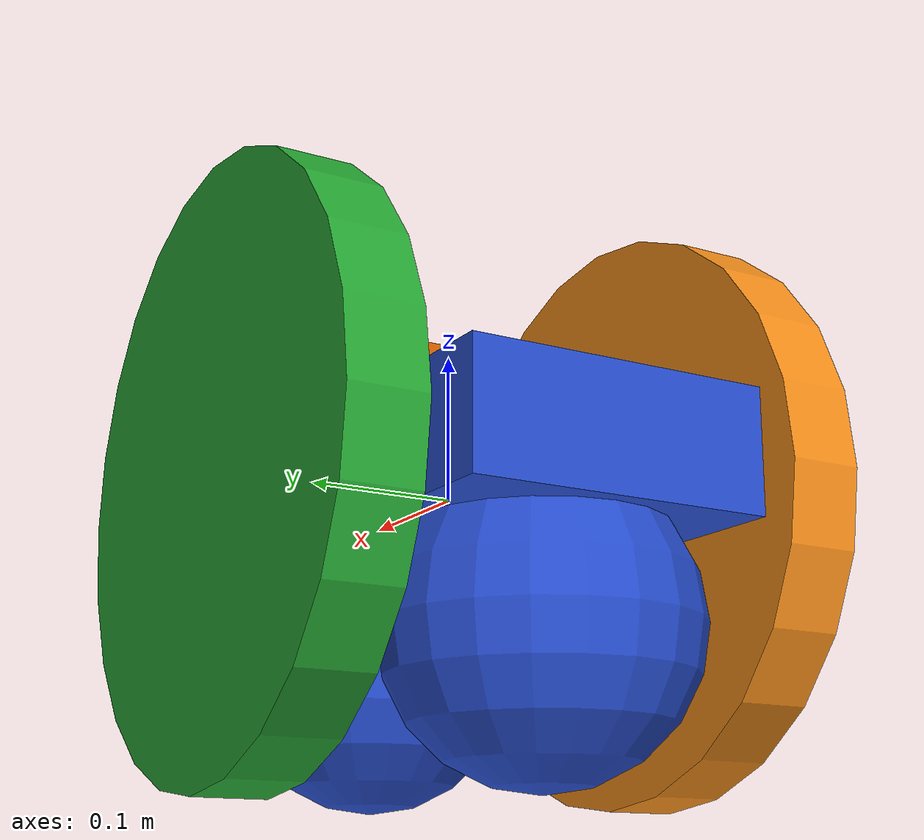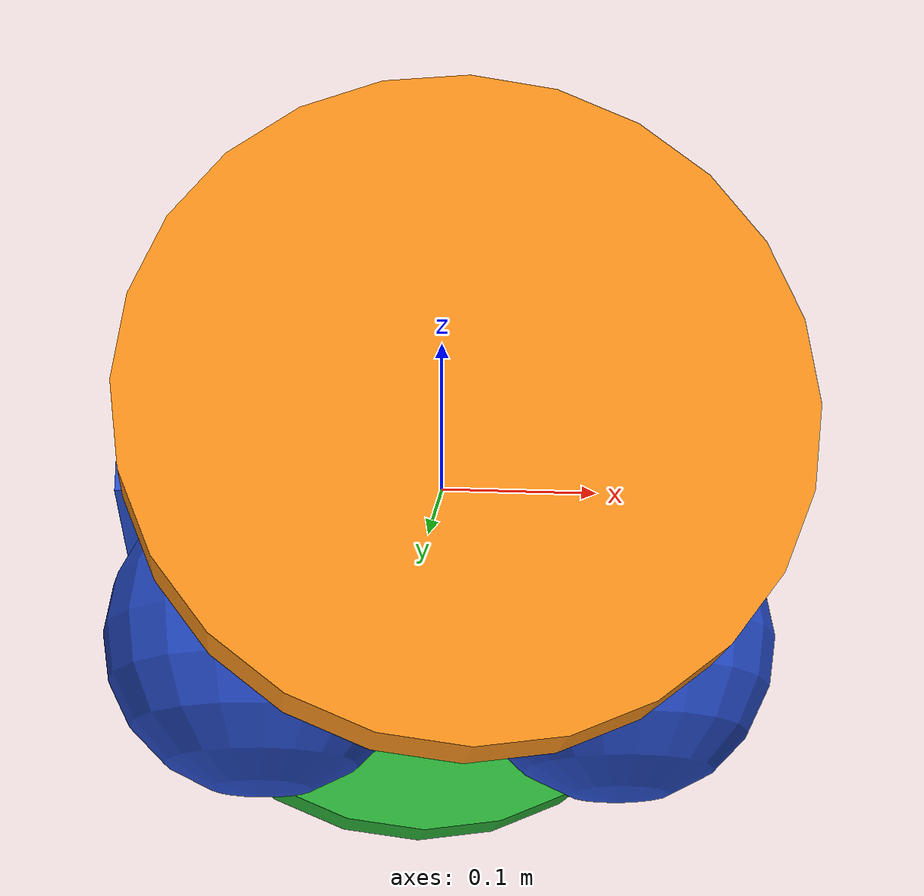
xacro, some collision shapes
<?xml version='1.0'?>

<robot name="my_robot" xmlns:xacro="http://www.ros.org/wiki/xacro">

<gazebo reference='chassis'>
  <material>Gazebo/Blue</material>
</gazebo>

<gazebo reference='left_wheel'>
  <material>Gazebo/Green</material>
</gazebo>

<gazebo reference='right_wheel'>
  <material>Gazebo/Orange</material>
</gazebo>

<gazebo reference="camera">
  <material>Gazebo/Yellow</material>
</gazebo>
<xacro:include filename="$(find my_robot)/urdf/my_robot.gazebo" />
  <link name="robot_footprint"></link>

  <joint name="robot_footprint_joint" type="fixed">
    <origin xyz="0 0 0" rpy="0 0 0" />
    <parent link="robot_footprint"/>
    <child link="chassis" />
  </joint>

  <link name='chassis'>
    <pose>0 0 0.1 0 0 0</pose>
    <inertial>
      <mass value="15.0"/>
      <origin xyz="0.0 0 0" rpy=" 0 0 0"/>
      <inertia
          ixx="0.1" ixy="0" ixz="0"
          iyy="0.1" iyz="0"
          izz="0.1"
      />
    </inertial>

    <collision name='collision'>
      <origin xyz="0 0 0" rpy=" 0 0 0"/>
      <geometry>
        <box size=".4 .2 .08"/>
      </geometry>
    </collision>

    <visual name='chassis_visual'>
      <origin xyz="0 0 0" rpy=" 0 0 0"/>
      <geometry>
        <box size=".4 .2 .08"/>
      </geometry>
    </visual>

    <collision name='back_caster_collision'>
      <origin xyz="-0.11 0 -0.1" rpy=" 0 0 0"/>
      <geometry>
        <sphere radius="0.099"/>
      </geometry>
    </collision>

    <visual name='back_caster_visual'>
      <origin xyz="-0.11 0 -0.1" rpy=" 0 0 0"/>
      <geometry>
        <sphere radius="0.1"/>
      </geometry>
    </visual>

    <collision name='front_caster_collision'>
      <origin xyz="0.11 0 -0.1" rpy=" 0 0 0"/>
      <geometry>
        <sphere radius="0.099"/>
      </geometry>
    </collision>

    <visual name='front_caster_visual'>
      <origin xyz="0.11 0 -0.1" rpy=" 0 0 0"/>
      <geometry>
        <sphere radius="0.1"/>
      </geometry>
    </visual>

  </link>
<!--RUEDAS  -->
  <joint type="continuous" name="left_wheel_hinge">
    <origin xyz="0 0.15 0" rpy="0 0 0"/>
    <child link="left_wheel"/>
    <parent link="chassis"/>
    <axis xyz="0 1 0" rpy="0 0 0"/>
    <limit effort="10000" velocity="1000"/>
    <dynamics damping="1.0" friction="1.0"/>
  </joint>
  <link name='left_wheel'>
    <pose>0 0 0 0 0 0</pose>
      <inertial>
        <mass value="5"/>
        <origin xyz="0.0 0 0" rpy=" 0 1.57057 1.57057"/>
        <inertia
          ixx="0.1" ixy="0" ixz="0"
          iyy="0.1" iyz="0"
          izz="0.1"
        />
        </inertial>

      <visual>
        <origin xyz="0 0 0" rpy=" 0 1.57057 1.57057"/>
        <geometry>
          <cylinder length="0.05" radius="0.2"/>
        </geometry>
      </visual>

      <collision name='collision_left_wheel'>
        <origin xyz="0 0 0" rpy="0 1.57057 1.57057"/>
          <geometry>
          <cylinder length="0.05" radius="0.2"/>
        </geometry>
      </collision>
  </link>

  <joint type="continuous" name="right_wheel_hinge">
    <origin xyz="0 -0.15 0" rpy="0 0 0"/>
    <child link="right_wheel"/>
    <parent link="chassis"/>
    <axis xyz="0 1 0" rpy="0 0 0"/>
    <limit effort="10000" velocity="1000"/>
    <dynamics damping="1.0" friction="1.0"/>
  </joint>
  <link name='right_wheel'>
    <pose>0 0 0 0 1.57057 1.5707</pose>
      <inertial>
        <mass value="5"/>
        <origin xyz="0.0 0 0" rpy="0 1.57057 1.57057"/>
        <inertia
          ixx="0.1" ixy="0" ixz="0"
          iyy="0.1" iyz="0"
          izz="0.1"
        />
      </inertial>
      <visual>
        <origin xyz="0 0 0" rpy=" 0 1.57057 1.57057"/>
        <geometry>
          <cylinder length="0.05" radius="0.2"/>
        </geometry>
      </visual>
      <collision name='collision_right_wheel'>
        <origin xyz="0 0 0" rpy=" 0 1.57057 1.57057"/>
          <geometry>
          <cylinder length="0.05" radius="0.2"/>
          </geometry>
      </collision>
</link>

<!--camera  -->
<joint type="fixed" name="camera_joint">
    <origin xyz="0.2 0 0" rpy="0 0 0"/>
    <child link="camera"/>
    <parent link="chassis"/>
    <axis xyz="0 1 0" rpy="0 0 0"/>
  </joint>
<link name='camera'>
    <pose>0 0 0 0 0 0</pose>
      <inertial>
        <mass value="0.1" />
        <origin xyz="0.0 0 0" rpy="0 0 0"/>
        <inertia
         ixx="1e-6" ixy="0" ixz="0" iyy="1e-6" iyz="0" izz="1e-6"
        />
      </inertial>
      <visual>
        <origin xyz="0 0 0" rpy=" 0 0 0"/>
        <geometry>
          <box size="0.05 0.05 0.05"/>
        </geometry>
      </visual>

      <collision name='colision_camara'>
        <origin xyz="0 0 0" rpy=" 0 0 0"/>
          <geometry>
           <box size="0.05 0.05 0.05"/>
          </geometry>
        </collision>
</link>

<!--LIDAR  -->
<joint type="fixed" name="hokuyo_joint">
    <origin xyz="0.15 0 0.1" rpy="0 0 0"/>
    <child link="hokuyo"/>
    <parent link="chassis"/>
    <axis xyz="0 1 0" rpy="0 0 0"/>
  </joint>
<link name='hokuyo'>
    <pose>0 0 0 0 0 0</pose>
      <inertial>
        <mass value="1e-5" />
        <origin xyz="0.0 0 0" rpy="0 0 0"/>
        <inertia
         ixx="1e-6" ixy="0" ixz="0" iyy="1e-6" iyz="0" izz="1e-6"
      />
      </inertial>
      <visual name='visual_lidar'>
        <origin xyz="0 0 0" rpy=" 0 0 0"/>
        <geometry>
 <mesh filename="package://my_robot/meshes/hokuyo.dae" />
        </geometry>
      </visual>

      <collision name='collision_lidar'>
        <origin xyz="0 0 0" rpy=" 0 0 0"/>
          <geometry>
           <box size="0.1 0.1 0.1"/>
          </geometry>
        </collision>
</link>

</robot>
